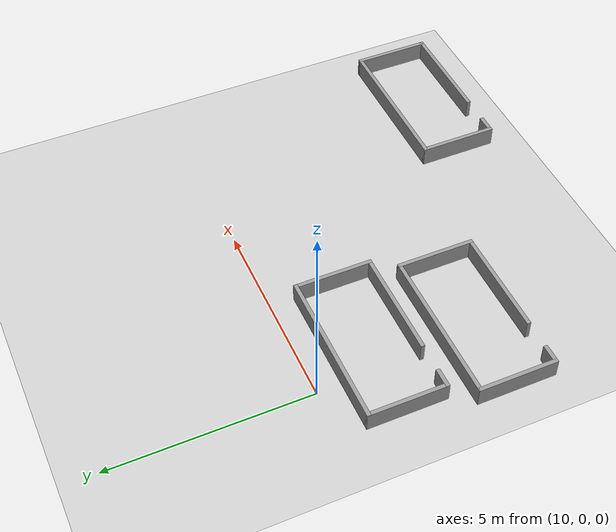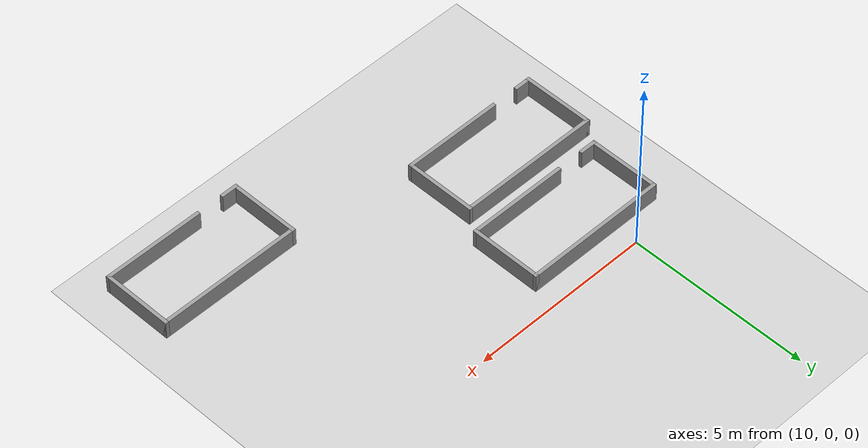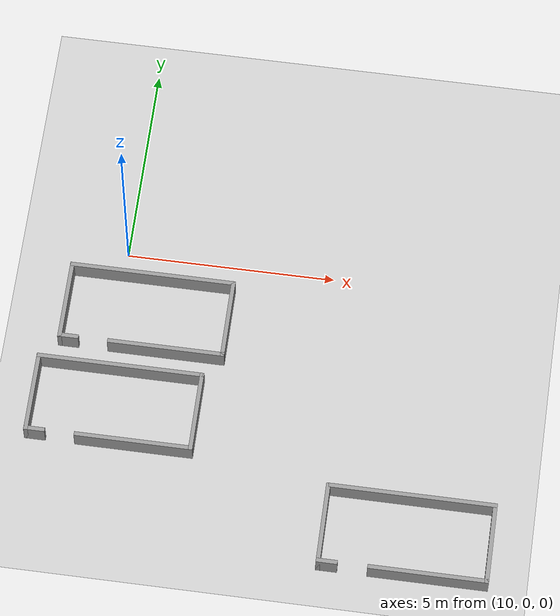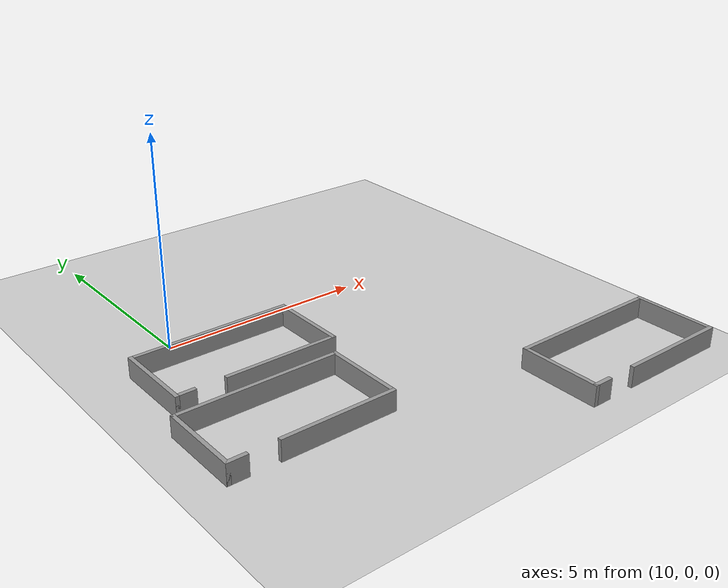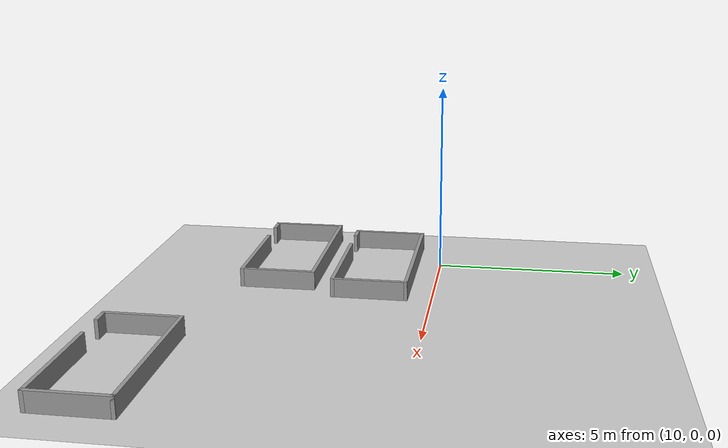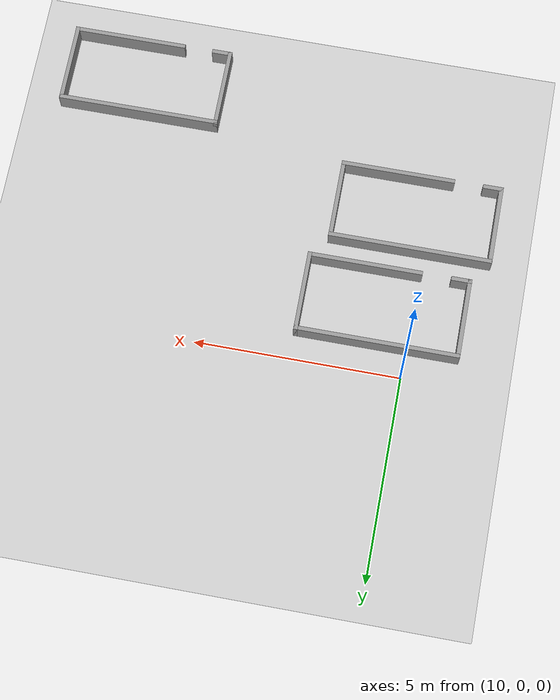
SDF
<sdf version="1.6">
 <world name="default">
  <model name="ground_plane">
   <static>1</static>
   <link name="link">
    <collision name="collision">
     <geometry><plane><normal>0 0 1</normal><size>40 40</size></plane></geometry>
     <surface>
      <contact><collide_bitmask>65535</collide_bitmask></contact>
      <friction><ode><mu>100</mu><mu2>50</mu2></ode></friction>
     </surface>
     <max_contacts>15</max_contacts>
    </collision>
    <visual name="visual">
     <cast_shadows>0</cast_shadows>
     <geometry><plane><normal>0 0 1</normal><size>40 40</size></plane></geometry>
     <material>
      <script><uri>file://media/materials/scripts/gazebo.material</uri><name>Gazebo/Grey</name></script>
     </material>
    </visual>
   </link>
  </model>
  <model name="shape2">
   <pose>10.7 -1.6 0 0 -0 0</pose>
   <link name="Wall_0">
    <collision name="Wall_0_Collision">
     <geometry><box><size>3.98685 0.1 0.5</size></box></geometry>
     <pose>0 0 0.25 0 -0 0</pose>
    </collision>
    <visual name="Wall_0_Visual">
     <pose>0 0 0.25 0 -0 0</pose>
     <geometry><box><size>3.98685 0.1 0.5</size></box></geometry>
     <material>
      <script><uri>file://media/materials/scripts/gazebo.material</uri><name>Gazebo/Grey</name></script>
      <ambient>1 1 1 1</ambient>
     </material>
     <meta><layer>0</layer></meta>
    </visual>
    <pose>0.003288 0.95 0 0 -0 0</pose>
   </link>
   <link name="Wall_1">
    <collision name="Wall_1_Collision">
     <geometry><box><size>2 0.1 0.5</size></box></geometry>
     <pose>0 0 0.25 0 -0 0</pose>
    </collision>
    <visual name="Wall_1_Visual">
     <pose>0 0 0.25 0 -0 0</pose>
     <geometry><box><size>2 0.1 0.5</size></box></geometry>
     <material>
      <script><uri>file://media/materials/scripts/gazebo.material</uri><name>Gazebo/Grey</name></script>
      <ambient>1 1 1 1</ambient>
     </material>
     <meta><layer>0</layer></meta>
    </visual>
    <pose>1.94671 0 0 0 -0 -1.5708</pose>
   </link>
   <link name="Wall_2">
    <collision name="Wall_2_Collision">
     <geometry><box><size>2.8 0.1 0.5</size></box></geometry>
     <pose>0 0 0.25 0 -0 0</pose>
    </collision>
    <visual name="Wall_2_Visual">
     <pose>0 0 0.25 0 -0 0</pose>
     <geometry><box><size>2.8 0.1 0.5</size></box></geometry>
     <material>
      <script><uri>file://media/materials/scripts/gazebo.material</uri><name>Gazebo/Grey</name></script>
      <ambient>1 1 1 1</ambient>
     </material>
     <meta><layer>0</layer></meta>
    </visual>
    <pose>0.596712 -0.95 0 0 -0 3.14159</pose>
   </link>
   <link name="Wall_4">
    <collision name="Wall_4_Collision">
     <geometry><box><size>2 0.1 0.5</size></box></geometry>
     <pose>0 0 0.25 0 -0 0</pose>
    </collision>
    <visual name="Wall_4_Visual">
     <pose>0 0 0.25 0 -0 0</pose>
     <geometry><box><size>2 0.1 0.5</size></box></geometry>
     <material>
      <script><uri>file://media/materials/scripts/gazebo.material</uri><name>Gazebo/Grey</name></script>
      <ambient>1 1 1 1</ambient>
     </material>
     <meta><layer>0</layer></meta>
    </visual>
    <pose>-1.94671 0 0 0 -0 -1.5708</pose>
   </link>
   <link name="Wall_5">
    <collision name="Wall_5_Collision">
     <geometry><box><size>0.5 0.1 0.5</size></box></geometry>
     <pose>0 0 0.25 0 -0 0</pose>
    </collision>
    <visual name="Wall_5_Visual">
     <pose>0 0 0.25 0 -0 0</pose>
     <geometry><box><size>0.5 0.1 0.5</size></box></geometry>
     <material>
      <script><uri>file://media/materials/scripts/gazebo.material</uri><name>Gazebo/Grey</name></script>
      <ambient>1 1 1 1</ambient>
     </material>
     <meta><layer>0</layer></meta>
    </visual>
    <pose>-1.74671 -0.95 0 0 -0 0</pose>
   </link>
   <static>1</static>
  </model>
  <model name="shape2">
   <pose>17.5 -6.5 0 0 -0 0</pose>
   <link name="Wall_0">
    <collision name="Wall_0_Collision">
     <geometry><box><size>3.98685 0.1 0.5</size></box></geometry>
     <pose>0 0 0.25 0 -0 0</pose>
    </collision>
    <visual name="Wall_0_Visual">
     <pose>0 0 0.25 0 -0 0</pose>
     <geometry><box><size>3.98685 0.1 0.5</size></box></geometry>
     <material>
      <script><uri>file://media/materials/scripts/gazebo.material</uri><name>Gazebo/Grey</name></script>
      <ambient>1 1 1 1</ambient>
     </material>
     <meta><layer>0</layer></meta>
    </visual>
    <pose>0.003288 0.95 0 0 -0 0</pose>
   </link>
   <link name="Wall_1">
    <collision name="Wall_1_Collision">
     <geometry><box><size>2 0.1 0.5</size></box></geometry>
     <pose>0 0 0.25 0 -0 0</pose>
    </collision>
    <visual name="Wall_1_Visual">
     <pose>0 0 0.25 0 -0 0</pose>
     <geometry><box><size>2 0.1 0.5</size></box></geometry>
     <material>
      <script><uri>file://media/materials/scripts/gazebo.material</uri><name>Gazebo/Grey</name></script>
      <ambient>1 1 1 1</ambient>
     </material>
     <meta><layer>0</layer></meta>
    </visual>
    <pose>1.94671 0 0 0 -0 -1.5708</pose>
   </link>
   <link name="Wall_2">
    <collision name="Wall_2_Collision">
     <geometry><box><size>2.8 0.1 0.5</size></box></geometry>
     <pose>0 0 0.25 0 -0 0</pose>
    </collision>
    <visual name="Wall_2_Visual">
     <pose>0 0 0.25 0 -0 0</pose>
     <geometry><box><size>2.8 0.1 0.5</size></box></geometry>
     <material>
      <script><uri>file://media/materials/scripts/gazebo.material</uri><name>Gazebo/Grey</name></script>
      <ambient>1 1 1 1</ambient>
     </material>
     <meta><layer>0</layer></meta>
    </visual>
    <pose>0.596712 -0.95 0 0 -0 3.14159</pose>
   </link>
   <link name="Wall_4">
    <collision name="Wall_4_Collision">
     <geometry><box><size>2 0.1 0.5</size></box></geometry>
     <pose>0 0 0.25 0 -0 0</pose>
    </collision>
    <visual name="Wall_4_Visual">
     <pose>0 0 0.25 0 -0 0</pose>
     <geometry><box><size>2 0.1 0.5</size></box></geometry>
     <material>
      <script><uri>file://media/materials/scripts/gazebo.material</uri><name>Gazebo/Grey</name></script>
      <ambient>1 1 1 1</ambient>
     </material>
     <meta><layer>0</layer></meta>
    </visual>
    <pose>-1.94671 0 0 0 -0 -1.5708</pose>
   </link>
   <link name="Wall_5">
    <collision name="Wall_5_Collision">
     <geometry><box><size>0.5 0.1 0.5</size></box></geometry>
     <pose>0 0 0.25 0 -0 0</pose>
    </collision>
    <visual name="Wall_5_Visual">
     <pose>0 0 0.25 0 -0 0</pose>
     <geometry><box><size>0.5 0.1 0.5</size></box></geometry>
     <material>
      <script><uri>file://media/materials/scripts/gazebo.material</uri><name>Gazebo/Grey</name></script>
      <ambient>1 1 1 1</ambient>
     </material>
     <meta><layer>0</layer></meta>
    </visual>
    <pose>-1.74671 -0.95 0 0 -0 0</pose>
   </link>
   <static>1</static>
  </model>
  <model name="shape2">
   <pose>10.3 -4.1 0 0 -0 0</pose>
   <link name="Wall_0">
    <collision name="Wall_0_Collision">
     <geometry><box><size>3.98685 0.1 0.5</size></box></geometry>
     <pose>0 0 0.25 0 -0 0</pose>
    </collision>
    <visual name="Wall_0_Visual">
     <pose>0 0 0.25 0 -0 0</pose>
     <geometry><box><size>3.98685 0.1 0.5</size></box></geometry>
     <material>
      <script><uri>file://media/materials/scripts/gazebo.material</uri><name>Gazebo/Grey</name></script>
      <ambient>1 1 1 1</ambient>
     </material>
     <meta><layer>0</layer></meta>
    </visual>
    <pose>0.003288 0.95 0 0 -0 0</pose>
   </link>
   <link name="Wall_1">
    <collision name="Wall_1_Collision">
     <geometry><box><size>2 0.1 0.5</size></box></geometry>
     <pose>0 0 0.25 0 -0 0</pose>
    </collision>
    <visual name="Wall_1_Visual">
     <pose>0 0 0.25 0 -0 0</pose>
     <geometry><box><size>2 0.1 0.5</size></box></geometry>
     <material>
      <script><uri>file://media/materials/scripts/gazebo.material</uri><name>Gazebo/Grey</name></script>
      <ambient>1 1 1 1</ambient>
     </material>
     <meta><layer>0</layer></meta>
    </visual>
    <pose>1.94671 0 0 0 -0 -1.5708</pose>
   </link>
   <link name="Wall_2">
    <collision name="Wall_2_Collision">
     <geometry><box><size>2.8 0.1 0.5</size></box></geometry>
     <pose>0 0 0.25 0 -0 0</pose>
    </collision>
    <visual name="Wall_2_Visual">
     <pose>0 0 0.25 0 -0 0</pose>
     <geometry><box><size>2.8 0.1 0.5</size></box></geometry>
     <material>
      <script><uri>file://media/materials/scripts/gazebo.material</uri><name>Gazebo/Grey</name></script>
      <ambient>1 1 1 1</ambient>
     </material>
     <meta><layer>0</layer></meta>
    </visual>
    <pose>0.596712 -0.95 0 0 -0 3.14159</pose>
   </link>
   <link name="Wall_4">
    <collision name="Wall_4_Collision">
     <geometry><box><size>2 0.1 0.5</size></box></geometry>
     <pose>0 0 0.25 0 -0 0</pose>
    </collision>
    <visual name="Wall_4_Visual">
     <pose>0 0 0.25 0 -0 0</pose>
     <geometry><box><size>2 0.1 0.5</size></box></geometry>
     <material>
      <script><uri>file://media/materials/scripts/gazebo.material</uri><name>Gazebo/Grey</name></script>
      <ambient>1 1 1 1</ambient>
     </material>
     <meta><layer>0</layer></meta>
    </visual>
    <pose>-1.94671 0 0 0 -0 -1.5708</pose>
   </link>
   <link name="Wall_5">
    <collision name="Wall_5_Collision">
     <geometry><box><size>0.5 0.1 0.5</size></box></geometry>
     <pose>0 0 0.25 0 -0 0</pose>
    </collision>
    <visual name="Wall_5_Visual">
     <pose>0 0 0.25 0 -0 0</pose>
     <geometry><box><size>0.5 0.1 0.5</size></box></geometry>
     <material>
      <script><uri>file://media/materials/scripts/gazebo.material</uri><name>Gazebo/Grey</name></script>
      <ambient>1 1 1 1</ambient>
     </material>
     <meta><layer>0</layer></meta>
    </visual>
    <pose>-1.74671 -0.95 0 0 -0 0</pose>
   </link>
   <static>1</static>
  </model>
 </world>
</sdf>
